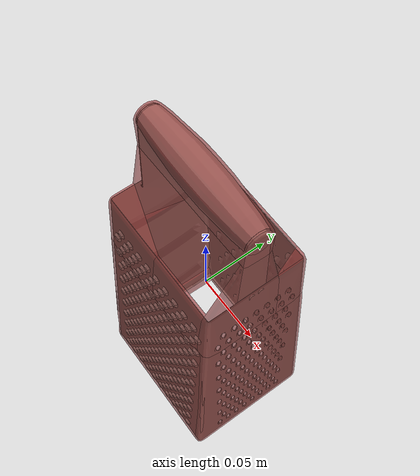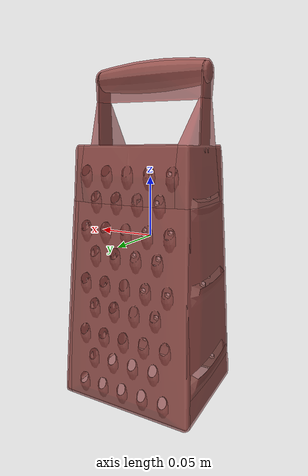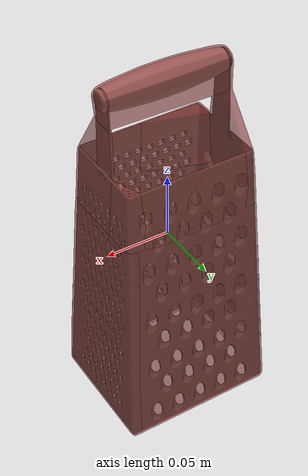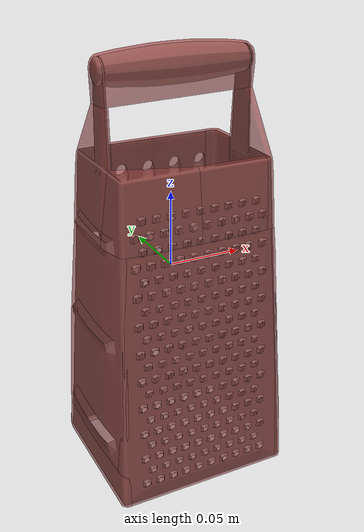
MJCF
<mujoco model="model">
  <option timestep="0.002" gravity="0.0 0.0 -9.81"/>
  <compiler angle="radian"/>
  <asset>
    <mesh file="visual/CheeseGrater007.obj" name="CheeseGrater007_vis"/>
    <mesh file="visual/Prop.obj" name="CheeseGrater007_Prop_vis"/>
    <texture file="visual/T_BC001.png" name="CheeseGrater007_material" type="2d"/>
    <material name="CheeseGrater007_material" rgba="1 1 1 1.0" texture="CheeseGrater007_material" shininess="0.2" specular="0.99"/>
    <texture file="visual/T_BC001.png" name="CheeseGrater007_Prop_material" type="2d"/>
    <material name="CheeseGrater007_Prop_material" rgba="1 1 1 1.0" texture="CheeseGrater007_Prop_material" shininess="0.8037878721952438" specular="0.6"/>
    <mesh file="collision/collision_mesh_collision_0.obj" name="CheeseGrater007_collision_mesh_0"/>
    <mesh file="collision/collision_mesh_collision_1.obj" name="CheeseGrater007_collision_mesh_1"/>
    <mesh file="collision/collision_mesh_collision_2.obj" name="CheeseGrater007_collision_mesh_2"/>
    <mesh file="collision/collision_mesh_collision_3.obj" name="CheeseGrater007_collision_mesh_3"/>
    <mesh file="collision/collision_mesh_collision_4.obj" name="CheeseGrater007_collision_mesh_4"/>
    <mesh file="collision/collision_mesh_collision_5.obj" name="CheeseGrater007_collision_mesh_5"/>
    <mesh file="collision/collision_mesh_collision_6.obj" name="CheeseGrater007_collision_mesh_6"/>
    <mesh file="collision/collision_mesh_collision_7.obj" name="CheeseGrater007_collision_mesh_7"/>
    <mesh file="collision/collision_mesh_collision_8.obj" name="CheeseGrater007_collision_mesh_8"/>
    <mesh file="collision/collision_mesh_collision_9.obj" name="CheeseGrater007_collision_mesh_9"/>
    <mesh file="collision/collision_mesh_collision_10.obj" name="CheeseGrater007_collision_mesh_10"/>
    <mesh file="collision/collision_mesh_collision_11.obj" name="CheeseGrater007_collision_mesh_11"/>
  </asset>
  <default>
    <default class="visual">
      <geom conaffinity="0" contype="0" group="1" type="mesh"/>
    </default>
    <default class="collision">
      <geom group="0" rgba="0.5 0 0 0.5" density="1.0" solref="0.004 1" solimp="0.998 0.998 0.001"/>
    </default>
    <default class="spawn">
      <geom group="0" rgba="1 1 1 0.5" contype="0" conaffinity="0"/>
      <site group="0" rgba="1 1 1 0.5"/>
    </default>
    <default class="region">
      <geom group="1" conaffinity="0" contype="0" rgba="0 1 0 0" mass="0"/>
    </default>
  </default>
  <worldbody>
    <body>
      <body name="object">
        <geom mesh="CheeseGrater007_vis" type="mesh" solimp="0.998 0.998 0.001" solref="0.001 1" friction="0.95 0.3 0.1" class="visual" material="CheeseGrater007_material"/>
        <body name="CheeseGrater007_Prop">
          <geom mesh="CheeseGrater007_Prop_vis" type="mesh" solimp="0.998 0.998 0.001" solref="0.001 1" friction="0.95 0.3 0.1" class="visual" material="CheeseGrater007_Prop_material"/>
        </body>
        <geom class="region" name="reg_bbox" type="box" pos="-0.00017626499999999837 -0.00023505000000000054 6.143999999999594e-05" size="0.062620305 0.05256443 0.14240128"/>
        <geom mesh="CheeseGrater007_collision_mesh_0" type="mesh" class="collision"/>
        <geom mesh="CheeseGrater007_collision_mesh_1" type="mesh" class="collision"/>
        <geom mesh="CheeseGrater007_collision_mesh_2" type="mesh" class="collision"/>
        <geom mesh="CheeseGrater007_collision_mesh_3" type="mesh" class="collision"/>
        <geom mesh="CheeseGrater007_collision_mesh_4" type="mesh" class="collision"/>
        <geom mesh="CheeseGrater007_collision_mesh_5" type="mesh" class="collision"/>
        <geom mesh="CheeseGrater007_collision_mesh_6" type="mesh" class="collision"/>
        <geom mesh="CheeseGrater007_collision_mesh_7" type="mesh" class="collision"/>
        <geom mesh="CheeseGrater007_collision_mesh_8" type="mesh" class="collision"/>
        <geom mesh="CheeseGrater007_collision_mesh_9" type="mesh" class="collision"/>
        <geom mesh="CheeseGrater007_collision_mesh_10" type="mesh" class="collision"/>
        <geom mesh="CheeseGrater007_collision_mesh_11" type="mesh" class="collision"/>
      </body>
    </body>
  </worldbody>
  <actuator/>
</mujoco>
